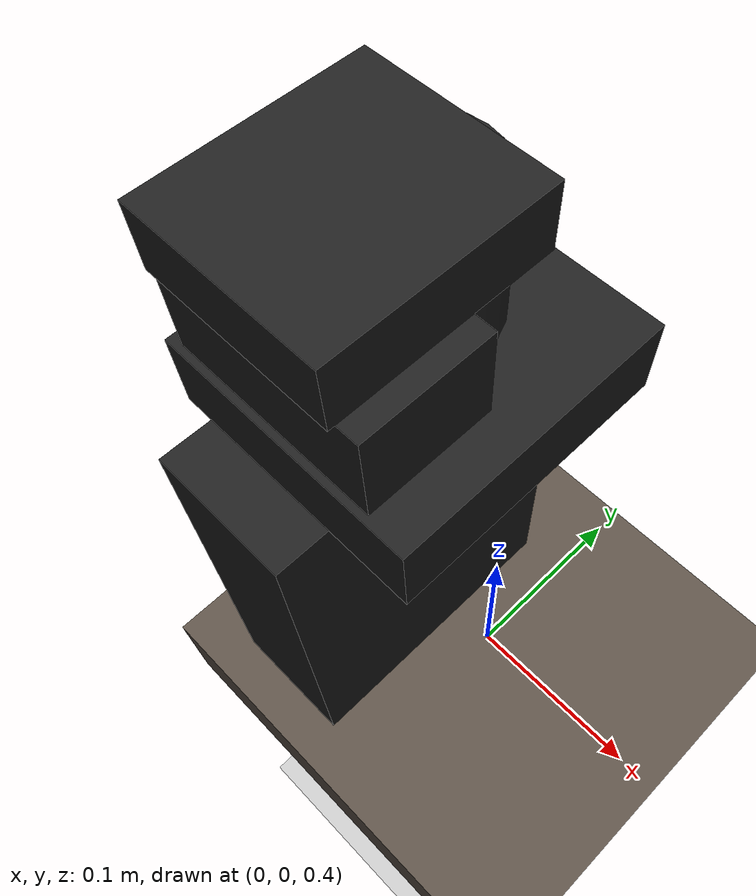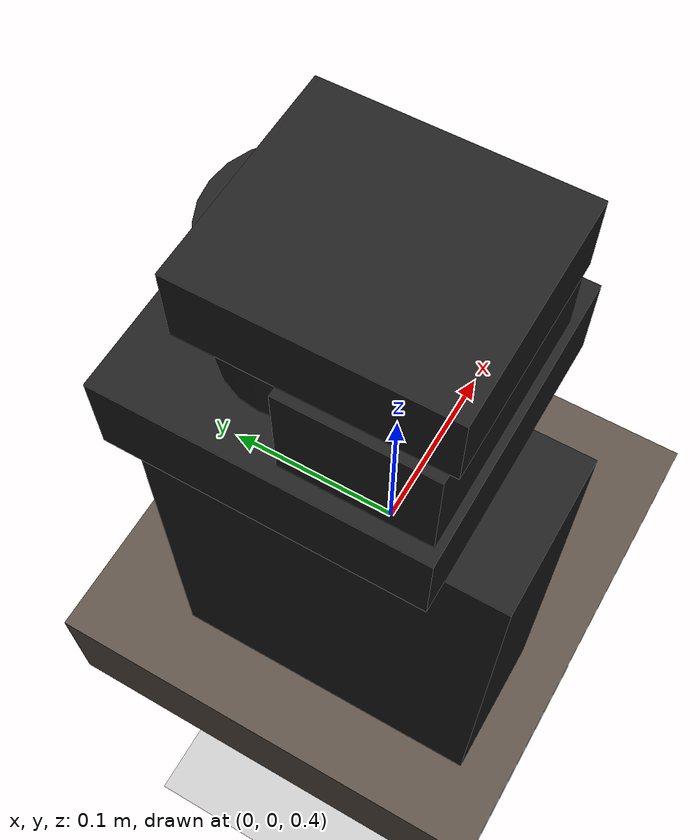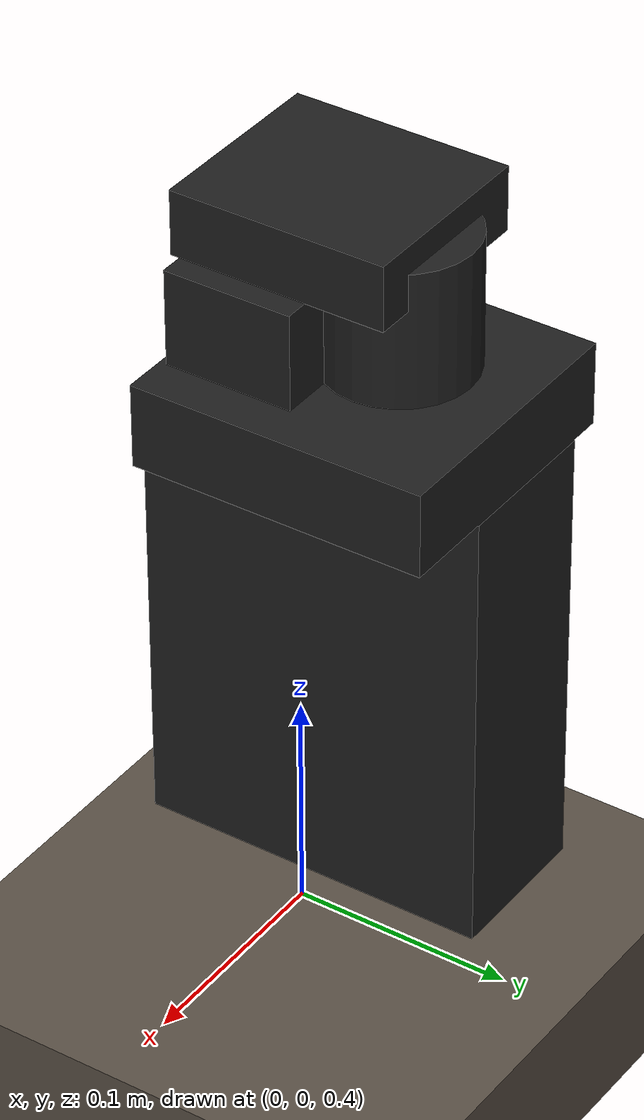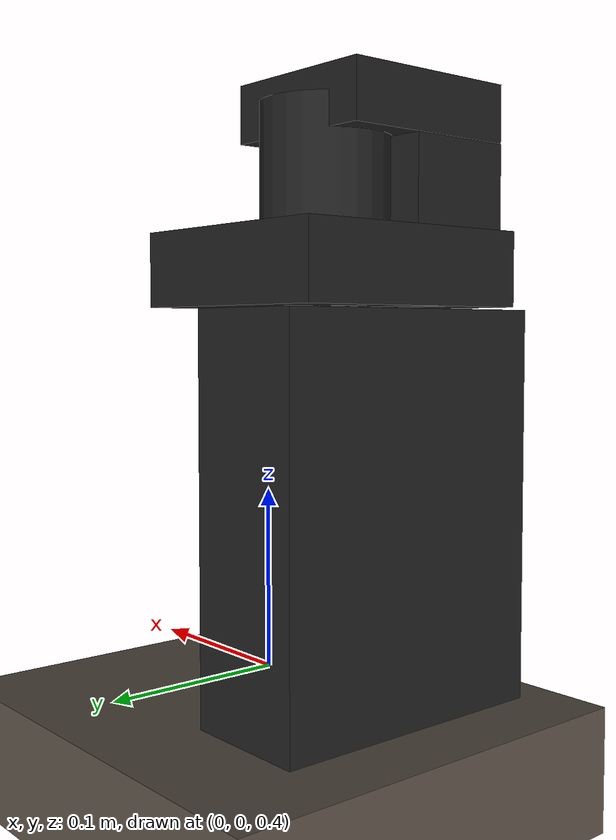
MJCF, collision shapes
<mujoco model="ycb_random_scene_0089">
  <compiler angle="radian" autolimits="true"/>

  <option timestep="0.002" gravity="0 0 -9.81" integrator="RK4"/>
  <visual>
    <global offwidth="1280" offheight="900"/>
  </visual>

  <default>
    <joint damping="0.01"/>
    <geom condim="4" friction="1.05 0.006 0.0001" solref="0.01 1" solimp="0.9 0.95 0.001"/>
  </default>

  <asset>
    <texture name="grid" type="2d" builtin="checker" width="512" height="512" rgb1="0.82 0.82 0.82" rgb2="0.68 0.68 0.68"/>
    <material name="floor_mat" texture="grid" texrepeat="2 2" reflectance="0.15"/>
    <material name="table_mat" rgba="0.35 0.31 0.27 1"/>
    <mesh name="mesh_003_cracker_box" file="../../objects/ycb/003_cracker_box/google_16k/textured.obj" scale="1.000000000 1.000000000 1.000000000"/>
    <texture name="tex_003_cracker_box" type="2d" file="../../objects/ycb/003_cracker_box/google_16k/texture_map.png"/>
    <material name="mat_003_cracker_box" texture="tex_003_cracker_box" specular="0.25" shininess="0.35"/>
    <mesh name="mesh_005_tomato_soup_can" file="../../objects/ycb/005_tomato_soup_can/google_16k/textured.obj" scale="1.000000000 1.000000000 1.000000000"/>
    <texture name="tex_005_tomato_soup_can" type="2d" file="../../objects/ycb/005_tomato_soup_can/google_16k/texture_map.png"/>
    <material name="mat_005_tomato_soup_can" texture="tex_005_tomato_soup_can" specular="0.25" shininess="0.35"/>
    <mesh name="mesh_007_tuna_fish_can" file="../../objects/ycb/007_tuna_fish_can/google_16k/textured.obj" scale="1.000000000 1.000000000 1.000000000"/>
    <texture name="tex_007_tuna_fish_can" type="2d" file="../../objects/ycb/007_tuna_fish_can/google_16k/texture_map.png"/>
    <material name="mat_007_tuna_fish_can" texture="tex_007_tuna_fish_can" specular="0.25" shininess="0.35"/>
    <mesh name="mesh_008_pudding_box" file="../../objects/ycb/008_pudding_box/google_16k/textured.obj" scale="1.000000000 1.000000000 1.000000000"/>
    <texture name="tex_008_pudding_box" type="2d" file="../../objects/ycb/008_pudding_box/google_16k/texture_map.png"/>
    <material name="mat_008_pudding_box" texture="tex_008_pudding_box" specular="0.25" shininess="0.35"/>
    <mesh name="mesh_010_potted_meat_can" file="../../objects/ycb/010_potted_meat_can/google_16k/textured.obj" scale="1.000000000 1.000000000 1.000000000"/>
    <texture name="tex_010_potted_meat_can" type="2d" file="../../objects/ycb/010_potted_meat_can/google_16k/texture_map.png"/>
    <material name="mat_010_potted_meat_can" texture="tex_010_potted_meat_can" specular="0.25" shininess="0.35"/>
    <mesh name="mesh_009_gelatin_box" file="../../objects/ycb/009_gelatin_box/google_16k/textured.obj" scale="1.000000000 1.000000000 1.000000000"/>
    <texture name="tex_009_gelatin_box" type="2d" file="../../objects/ycb/009_gelatin_box/google_16k/texture_map.png"/>
    <material name="mat_009_gelatin_box" texture="tex_009_gelatin_box" specular="0.25" shininess="0.35"/>
  </asset>

  <worldbody>
    <light name="key_light" pos="0.25 -0.55 1.2" dir="-0.2 0.45 -1"/>
    <camera name="overview" mode="targetbody" target="table" pos="0.82 -0.92 1.08" fovy="62"/>
    <camera name="topdown" mode="targetbody" target="table" pos="0.00 0.00 1.45" fovy="54"/>
    <camera name="front" mode="targetbody" target="table" pos="0.00 -1.20 0.72" fovy="55"/>
    <geom name="floor" type="plane" size="1.2 1.2 0.02" material="floor_mat"/>

    <body name="table" pos="0 0 0.35">
      <geom name="table_top" type="box" size="0.50 0.38 0.035" material="table_mat"/>
    </body>

    <body name="obj_003_cracker_box" pos="-0.064710 -0.015490 0.492719">
      <freejoint/>
      <geom name="obj_003_cracker_box_geom" type="box" size="0.035900 0.082018 0.106718" mass="0.411000" rgba="0.12 0.12 0.12 0.0" group="3"/>
      <geom name="obj_003_cracker_box_visual" type="mesh" mesh="mesh_003_cracker_box" material="mat_003_cracker_box" pos="0.012885 0.014142 -0.103475" quat="1.00000000 0.00000000 0.00000000 0.00000000" contype="0" conaffinity="0" group="2"/>
    </body>

    <body name="obj_005_tomato_soup_can" pos="-0.059030 0.008810 0.651365">
      <freejoint/>
      <geom name="obj_005_tomato_soup_can_geom" type="cylinder" size="0.033913 0.050928" mass="0.349000" rgba="0.12 0.12 0.12 0.0" group="3"/>
      <geom name="obj_005_tomato_soup_can_visual" type="mesh" mesh="mesh_005_tomato_soup_can" material="mat_005_tomato_soup_can" pos="0.009169 -0.084017 -0.051006" quat="1.00000000 0.00000000 0.00000000 0.00000000" contype="0" conaffinity="0" group="2"/>
    </body>

    <body name="obj_007_tuna_fish_can" pos="-0.065430 -0.013330 0.617206">
      <freejoint/>
      <geom name="obj_007_tuna_fish_can_geom" type="cylinder" size="0.042775 0.016769" mass="0.171000" rgba="0.12 0.12 0.12 0.0" group="3"/>
      <geom name="obj_007_tuna_fish_can_visual" type="mesh" mesh="mesh_007_tuna_fish_can" material="mat_007_tuna_fish_can" pos="0.026049 0.022132 -0.013551" quat="1.00000000 0.00000000 0.00000000 0.00000000" contype="0" conaffinity="0" group="2"/>
    </body>

    <body name="obj_008_pudding_box" pos="-0.050060 -0.002130 0.619881">
      <freejoint/>
      <geom name="obj_008_pudding_box_geom" type="box" size="0.064378 0.068969 0.019444" mass="0.187000" rgba="0.12 0.12 0.12 0.0" group="3"/>
      <geom name="obj_008_pudding_box_visual" type="mesh" mesh="mesh_008_pudding_box" material="mat_008_pudding_box" pos="0.019123 -0.000505 -0.018948" quat="0.70710678 0.00000000 0.00000000 0.70710678" contype="0" conaffinity="0" group="2"/>
    </body>

    <body name="obj_010_potted_meat_can" pos="-0.056830 -0.037820 0.642208">
      <freejoint/>
      <geom name="obj_010_potted_meat_can_geom" type="box" size="0.051042 0.030052 0.041771" mass="0.370000" rgba="0.12 0.12 0.12 0.0" group="3"/>
      <geom name="obj_010_potted_meat_can_visual" type="mesh" mesh="mesh_010_potted_meat_can" material="mat_010_potted_meat_can" pos="0.032785 0.026552 -0.038583" quat="1.00000000 0.00000000 0.00000000 0.00000000" contype="0" conaffinity="0" group="2"/>
    </body>

    <body name="obj_009_gelatin_box" pos="-0.060080 -0.020660 0.700017">
      <freejoint/>
      <geom name="obj_009_gelatin_box_geom" type="box" size="0.044702 0.050554 0.015037" mass="0.097000" rgba="0.12 0.12 0.12 0.0" group="3"/>
      <geom name="obj_009_gelatin_box_visual" type="mesh" mesh="mesh_009_gelatin_box" material="mat_009_gelatin_box" pos="0.022775 0.008245 -0.014492" quat="1.00000000 0.00000000 0.00000000 0.00000000" contype="0" conaffinity="0" group="2"/>
    </body>

  </worldbody>
</mujoco>
